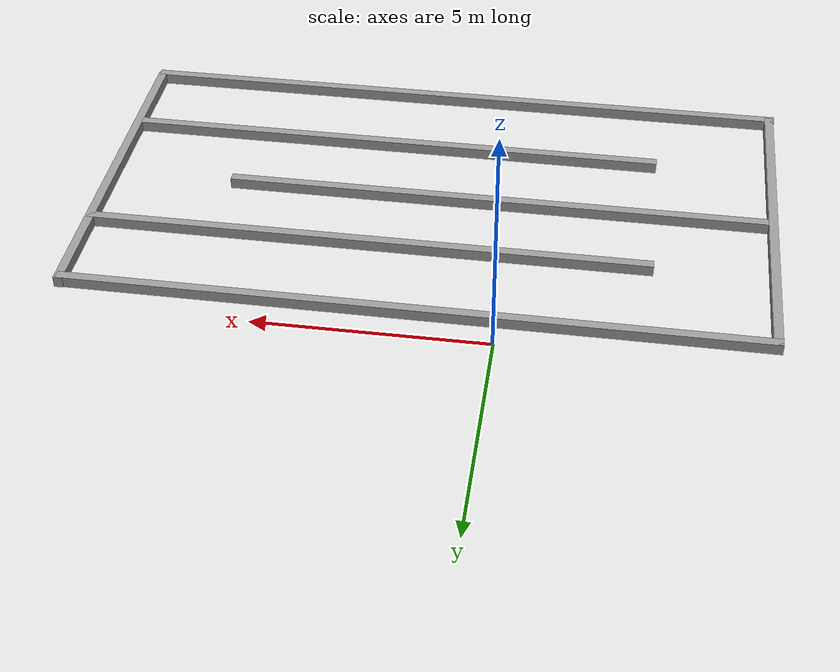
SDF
<?xml version='1.0'?>
<sdf version='1.4'>
  <model name='map_2'>
    <link name='Wall_0'>
      <collision name='Wall_0_Collision'>
        <geometry>
          <box>
            <size>15 0.2 0.25</size>
          </box>
        </geometry>
        <pose>0 0 0.125 0 -0 0</pose>
      </collision>
      <visual name='Wall_0_Visual'>
        <pose>0 0 0.125 0 -0 0</pose>
        <geometry>
          <box>
            <size>15 0.2 0.25</size>
          </box>
        </geometry>
        <material>
          <script>
            <uri>file://media/materials/scripts/gazebo.material</uri>
            <name>Gazebo/Grey</name>
          </script>
        </material>
      </visual>
      <velocity_decay>
        <linear>0</linear>
        <angular>0</angular>
      </velocity_decay>
      <pose>1.77 -0.62 0 0 -0 0</pose>
    </link>
    <link name='Wall_12'>
      <collision name='Wall_12_Collision'>
        <geometry>
          <box>
            <size>12.1369 0.2 0.25</size>
          </box>
        </geometry>
        <pose>0 0 0.125 0 -0 0</pose>
      </collision>
      <visual name='Wall_12_Visual'>
        <pose>0 0 0.125 0 -0 0</pose>
        <geometry>
          <box>
            <size>12.1369 0.2 0.25</size>
          </box>
        </geometry>
        <material>
          <script>
            <uri>file://media/materials/scripts/gazebo.material</uri>
            <name>Gazebo/Grey</name>
          </script>
        </material>
      </visual>
      <velocity_decay>
        <linear>0</linear>
        <angular>0</angular>
      </velocity_decay>
      <pose>0.3849 -4.48494 0 0 -0 0</pose>
    </link>
    <link name='Wall_14'>
      <collision name='Wall_14_Collision'>
        <geometry>
          <box>
            <size>12.1361 0.2 0.25</size>
          </box>
        </geometry>
        <pose>0 0 0.125 0 -0 0</pose>
      </collision>
      <visual name='Wall_14_Visual'>
        <pose>0 0 0.125 0 -0 0</pose>
        <geometry>
          <box>
            <size>12.1361 0.2 0.25</size>
          </box>
        </geometry>
        <material>
          <script>
            <uri>file://media/materials/scripts/gazebo.material</uri>
            <name>Gazebo/Grey</name>
          </script>
        </material>
      </visual>
      <velocity_decay>
        <linear>0</linear>
        <angular>0</angular>
      </velocity_decay>
      <pose>3.0299 -6.39194 0 0 -0 3.14159</pose>
    </link>
    <link name='Wall_2'>
      <collision name='Wall_2_Collision'>
        <geometry>
          <box>
            <size>8 0.2 0.25</size>
          </box>
        </geometry>
        <pose>0 0 0.125 0 -0 0</pose>
      </collision>
      <visual name='Wall_2_Visual'>
        <pose>0 0 0.125 0 -0 0</pose>
        <geometry>
          <box>
            <size>8 0.2 0.25</size>
          </box>
        </geometry>
        <material>
          <script>
            <uri>file://media/materials/scripts/gazebo.material</uri>
            <name>Gazebo/Grey</name>
          </script>
        </material>
      </visual>
      <velocity_decay>
        <linear>0</linear>
        <angular>0</angular>
      </velocity_decay>
      <pose>-5.6259 -4.53859 0 0 0 -1.5708</pose>
    </link>
    <link name='Wall_4'>
      <collision name='Wall_4_Collision'>
        <geometry>
          <box>
            <size>8 0.2 0.25</size>
          </box>
        </geometry>
        <pose>0 0 0.125 0 -0 0</pose>
      </collision>
      <visual name='Wall_4_Visual'>
        <pose>0 0 0.125 0 -0 0</pose>
        <geometry>
          <box>
            <size>8 0.2 0.25</size>
          </box>
        </geometry>
        <material>
          <script>
            <uri>file://media/materials/scripts/gazebo.material</uri>
            <name>Gazebo/Grey</name>
          </script>
        </material>
      </visual>
      <velocity_decay>
        <linear>0</linear>
        <angular>0</angular>
      </velocity_decay>
      <pose>9.18301 -4.50873 0 0 0 -1.5708</pose>
    </link>
    <link name='Wall_6'>
      <collision name='Wall_6_Collision'>
        <geometry>
          <box>
            <size>15 0.2 0.25</size>
          </box>
        </geometry>
        <pose>0 0 0.125 0 -0 0</pose>
      </collision>
      <visual name='Wall_6_Visual'>
        <pose>0 0 0.125 0 -0 0</pose>
        <geometry>
          <box>
            <size>15 0.2 0.25</size>
          </box>
        </geometry>
        <material>
          <script>
            <uri>file://media/materials/scripts/gazebo.material</uri>
            <name>Gazebo/Grey</name>
          </script>
        </material>
      </visual>
      <velocity_decay>
        <linear>0</linear>
        <angular>0</angular>
      </velocity_decay>
      <pose>1.75479 -8.4843 0 0 -0 0</pose>
    </link>
    <link name='Wall_8'>
      <collision name='Wall_8_Collision'>
        <geometry>
          <box>
            <size>12.3535 0.2 0.25</size>
          </box>
        </geometry>
        <pose>0 0 0.125 0 -0 0</pose>
      </collision>
      <visual name='Wall_8_Visual'>
        <pose>0 0 0.125 0 -0 0</pose>
        <geometry>
          <box>
            <size>12.3535 0.2 0.25</size>
          </box>
        </geometry>
        <material>
          <script>
            <uri>file://media/materials/scripts/gazebo.material</uri>
            <name>Gazebo/Grey</name>
          </script>
        </material>
      </visual>
      <velocity_decay>
        <linear>0</linear>
        <angular>0</angular>
      </velocity_decay>
      <pose>3.07664 -2.70068 0 0 -0 0</pose>
    </link>
    <static>1</static>
  </model>
</sdf>
